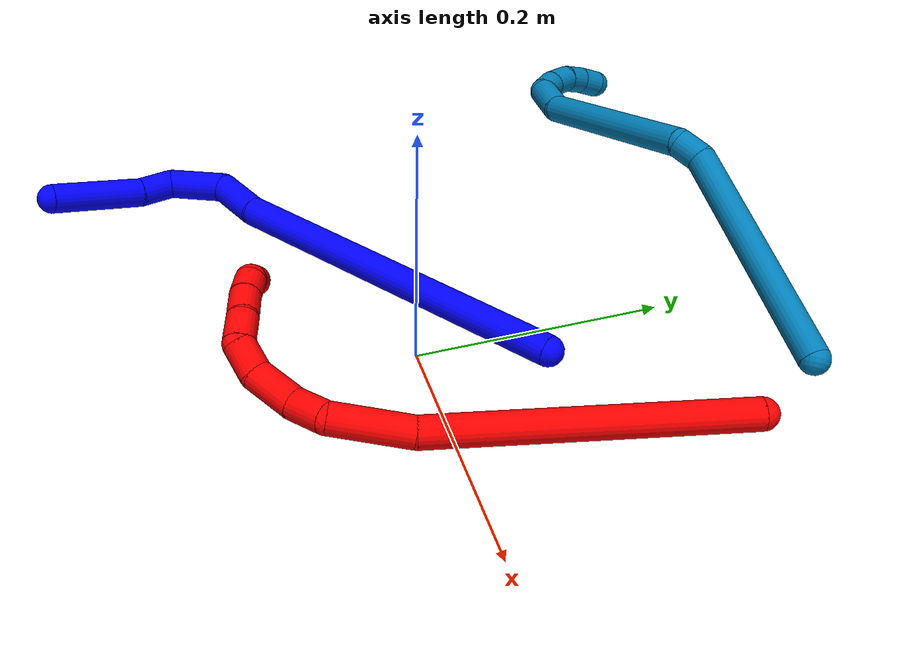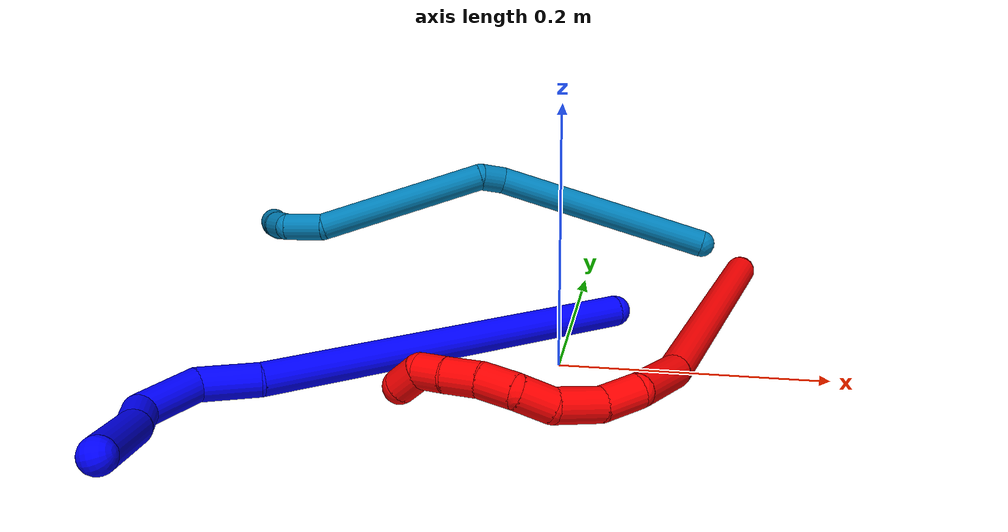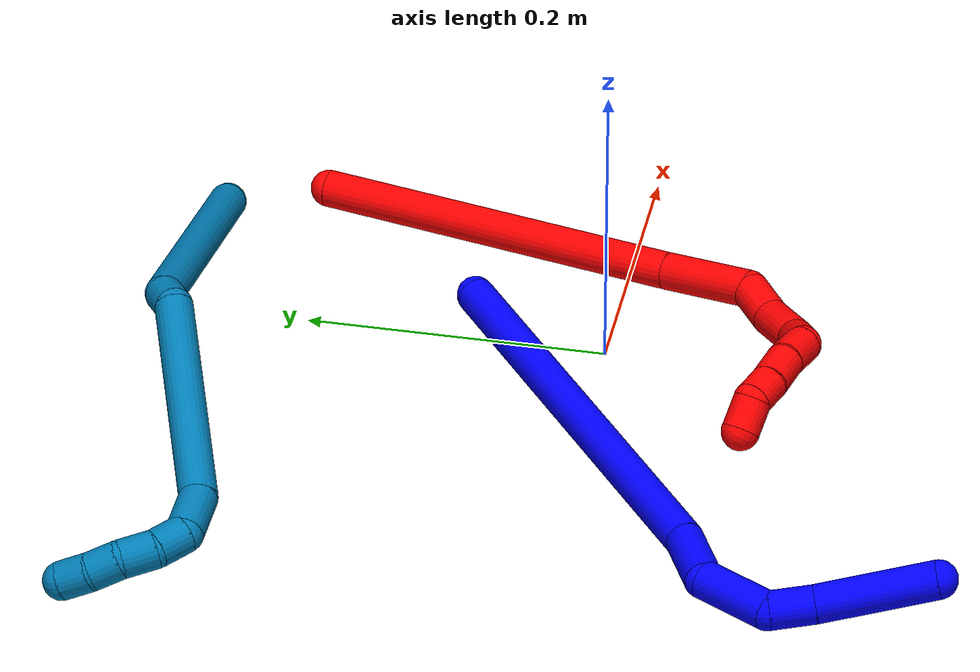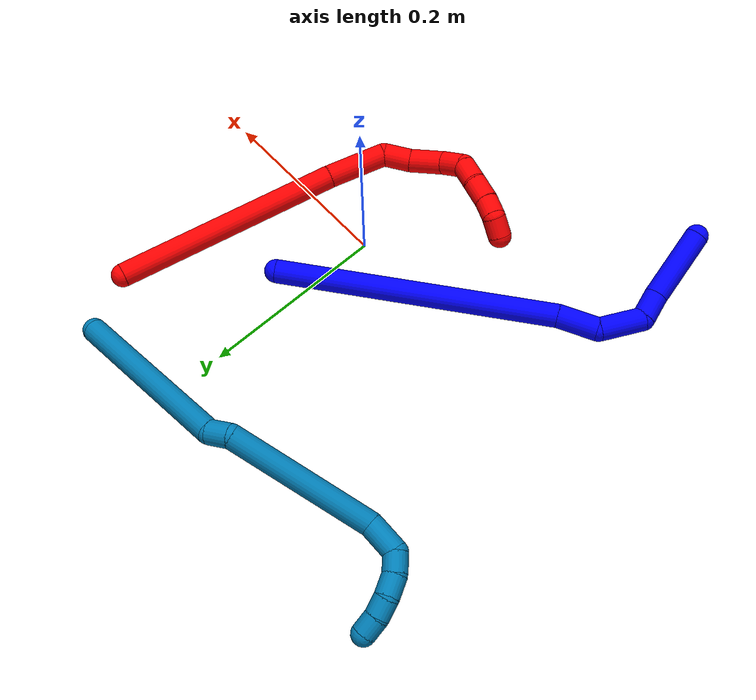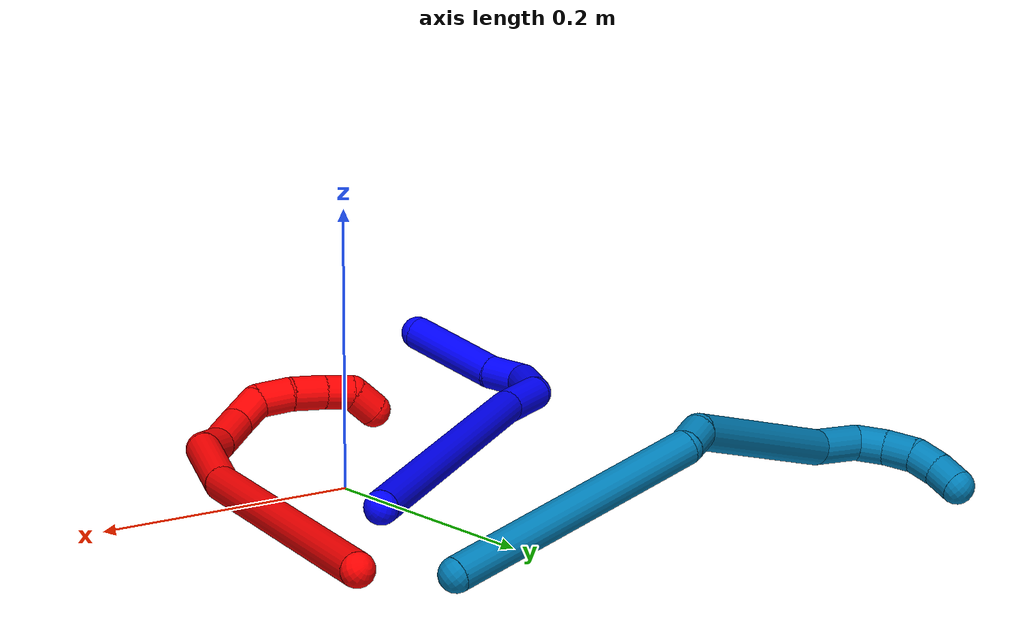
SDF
<sdf version="1.7">
 <world name="default">
  <model name="1">
   <static>0</static>
   <link name="1">
    <collision name="collision-cylinder-e_1_1_4">
     <pose>-0.087312 -0.042371 0.113708 0.356689 -0.623713 -0.116092</pose>
     <geometry><cylinder><radius>0.0125</radius><length>0.298986</length></cylinder></geometry>
     <surface>
      <friction><ode><mu>1.16</mu><mu2>1.16</mu2><slip1>0</slip1><slip2>0</slip2></ode></friction>
      <contact><ode><kp>1e+06</kp><kd>1</kd><max_vel>0</max_vel><min_depth>0.001</min_depth></ode></contact>
     </surface>
    </collision>
    <visual name="visual-cylinder-e_1_1_4">
     <pose>-0.087312 -0.042371 0.113708 0.356689 -0.623713 -0.116092</pose>
     <geometry><cylinder><radius>0.0125</radius><length>0.298986</length></cylinder></geometry>
     <material><ambient>0 0 1 1</ambient></material>
    </visual>
    <collision name="collision-cylinder-e_2_4_5">
     <pose>-0.183467 -0.092105 0.246315 0.371513 -0.411147 -0.078331</pose>
     <geometry><cylinder><radius>0.0125</radius><length>0.044254</length></cylinder></geometry>
     <surface>
      <friction><ode><mu>1.16</mu><mu2>1.16</mu2><slip1>0</slip1><slip2>0</slip2></ode></friction>
      <contact><ode><kp>1e+06</kp><kd>1</kd><max_vel>0</max_vel><min_depth>0.001</min_depth></ode></contact>
     </surface>
    </collision>
    <visual name="visual-cylinder-e_2_4_5">
     <pose>-0.183467 -0.092105 0.246315 0.371513 -0.411147 -0.078331</pose>
     <geometry><cylinder><radius>0.0125</radius><length>0.044254</length></cylinder></geometry>
     <material><ambient>0 0 1 1</ambient></material>
    </visual>
    <collision name="collision-cylinder-e_3_5_6">
     <pose>-0.213936 -0.103524 0.275835 0.36485 -1.08679 -0.221952</pose>
     <geometry><cylinder><radius>0.0125</radius><length>0.048866</length></cylinder></geometry>
     <surface>
      <friction><ode><mu>1.16</mu><mu2>1.16</mu2><slip1>0</slip1><slip2>0</slip2></ode></friction>
      <contact><ode><kp>1e+06</kp><kd>1</kd><max_vel>0</max_vel><min_depth>0.001</min_depth></ode></contact>
     </surface>
    </collision>
    <visual name="visual-cylinder-e_3_5_6">
     <pose>-0.213936 -0.103524 0.275835 0.36485 -1.08679 -0.221952</pose>
     <geometry><cylinder><radius>0.0125</radius><length>0.048866</length></cylinder></geometry>
     <material><ambient>0 0 1 1</ambient></material>
    </visual>
    <collision name="collision-cylinder-e_4_6_7">
     <pose>-0.249671 -0.108536 0.281746 2.94147 -1.24246 -2.86288</pose>
     <geometry><cylinder><radius>0.0125</radius><length>0.029808</length></cylinder></geometry>
     <surface>
      <friction><ode><mu>1.16</mu><mu2>1.16</mu2><slip1>0</slip1><slip2>0</slip2></ode></friction>
      <contact><ode><kp>1e+06</kp><kd>1</kd><max_vel>0</max_vel><min_depth>0.001</min_depth></ode></contact>
     </surface>
    </collision>
    <visual name="visual-cylinder-e_4_6_7">
     <pose>-0.249671 -0.108536 0.281746 2.94147 -1.24246 -2.86288</pose>
     <geometry><cylinder><radius>0.0125</radius><length>0.029808</length></cylinder></geometry>
     <material><ambient>0 0 1 1</ambient></material>
    </visual>
    <collision name="collision-cylinder-e_5_7_2">
     <pose>-0.300218 -0.119316 0.267031 2.36531 -1.20347 -2.06747</pose>
     <geometry><cylinder><radius>0.0125</radius><length>0.078087</length></cylinder></geometry>
     <surface>
      <friction><ode><mu>1.16</mu><mu2>1.16</mu2><slip1>0</slip1><slip2>0</slip2></ode></friction>
      <contact><ode><kp>1e+06</kp><kd>1</kd><max_vel>0</max_vel><min_depth>0.001</min_depth></ode></contact>
     </surface>
    </collision>
    <visual name="visual-cylinder-e_5_7_2">
     <pose>-0.300218 -0.119316 0.267031 2.36531 -1.20347 -2.06747</pose>
     <geometry><cylinder><radius>0.0125</radius><length>0.078087</length></cylinder></geometry>
     <material><ambient>0 0 1 1</ambient></material>
    </visual>
    <collision name="collision-sphere-2">
     <pose>-0.336657 -0.129139 0.257026 0 -0 0</pose>
     <geometry><sphere><radius>0.0125</radius></sphere></geometry>
     <surface>
      <friction><ode><mu>1.16</mu><mu2>1.16</mu2><slip1>0</slip1><slip2>0</slip2></ode></friction>
      <contact><ode><kp>1e+06</kp><kd>1</kd><max_vel>0</max_vel><min_depth>0.001</min_depth></ode></contact>
     </surface>
    </collision>
    <visual name="visual-sphere-2">
     <pose>-0.336657 -0.129139 0.257026 0 -0 0</pose>
     <geometry><sphere><radius>0.0125</radius></sphere></geometry>
     <material><ambient>0 0 1 1</ambient></material>
    </visual>
    <collision name="collision-sphere-7">
     <pose>-0.263779 -0.109492 0.277036 0 -0 0</pose>
     <geometry><sphere><radius>0.0125</radius></sphere></geometry>
     <surface>
      <friction><ode><mu>1.16</mu><mu2>1.16</mu2><slip1>0</slip1><slip2>0</slip2></ode></friction>
      <contact><ode><kp>1e+06</kp><kd>1</kd><max_vel>0</max_vel><min_depth>0.001</min_depth></ode></contact>
     </surface>
    </collision>
    <visual name="visual-sphere-7">
     <pose>-0.263779 -0.109492 0.277036 0 -0 0</pose>
     <geometry><sphere><radius>0.0125</radius></sphere></geometry>
     <material><ambient>0 0 1 1</ambient></material>
    </visual>
    <collision name="collision-sphere-6">
     <pose>-0.235563 -0.107581 0.286456 0 -0 0</pose>
     <geometry><sphere><radius>0.0125</radius></sphere></geometry>
     <surface>
      <friction><ode><mu>1.16</mu><mu2>1.16</mu2><slip1>0</slip1><slip2>0</slip2></ode></friction>
      <contact><ode><kp>1e+06</kp><kd>1</kd><max_vel>0</max_vel><min_depth>0.001</min_depth></ode></contact>
     </surface>
    </collision>
    <visual name="visual-sphere-6">
     <pose>-0.235563 -0.107581 0.286456 0 -0 0</pose>
     <geometry><sphere><radius>0.0125</radius></sphere></geometry>
     <material><ambient>0 0 1 1</ambient></material>
    </visual>
    <collision name="collision-sphere-5">
     <pose>-0.19231 -0.099468 0.265214 0 -0 0</pose>
     <geometry><sphere><radius>0.0125</radius></sphere></geometry>
     <surface>
      <friction><ode><mu>1.16</mu><mu2>1.16</mu2><slip1>0</slip1><slip2>0</slip2></ode></friction>
      <contact><ode><kp>1e+06</kp><kd>1</kd><max_vel>0</max_vel><min_depth>0.001</min_depth></ode></contact>
     </surface>
    </collision>
    <visual name="visual-sphere-5">
     <pose>-0.19231 -0.099468 0.265214 0 -0 0</pose>
     <geometry><sphere><radius>0.0125</radius></sphere></geometry>
     <material><ambient>0 0 1 1</ambient></material>
    </visual>
    <collision name="collision-sphere-1">
     <geometry><sphere><radius>0.0125</radius></sphere></geometry>
     <surface>
      <friction><ode><mu>1.16</mu><mu2>1.16</mu2><slip1>0</slip1><slip2>0</slip2></ode></friction>
      <contact><ode><kp>1e+06</kp><kd>1</kd><max_vel>0</max_vel><min_depth>0.001</min_depth></ode></contact>
     </surface>
    </collision>
    <visual name="visual-sphere-1">
     <geometry><sphere><radius>0.0125</radius></sphere></geometry>
     <material><ambient>0 0 1 1</ambient></material>
    </visual>
    <collision name="collision-sphere-4">
     <pose>-0.174623 -0.084741 0.227416 0 -0 0</pose>
     <geometry><sphere><radius>0.0125</radius></sphere></geometry>
     <surface>
      <friction><ode><mu>1.16</mu><mu2>1.16</mu2><slip1>0</slip1><slip2>0</slip2></ode></friction>
      <contact><ode><kp>1e+06</kp><kd>1</kd><max_vel>0</max_vel><min_depth>0.001</min_depth></ode></contact>
     </surface>
    </collision>
    <visual name="visual-sphere-4">
     <pose>-0.174623 -0.084741 0.227416 0 -0 0</pose>
     <geometry><sphere><radius>0.0125</radius></sphere></geometry>
     <material><ambient>0 0 1 1</ambient></material>
    </visual>
    <inertial>
     <pose>-0.151127 -0.06871 0.175252 0 -0 0</pose>
     <mass>0.5</mass>
     <inertia>
      <ixx>0.001558</ixx>
      <ixy>0</ixy>
      <ixz>0</ixz>
      <iyy>0.001963</iyy>
      <iyz>0</iyz>
      <izz>0.002035</izz>
     </inertia>
    </inertial>
   </link>
   <pose>0.034385 0.093791 0.011487 -1.86746 -0.079243 1.59748</pose>
  </model>
  <model name="2">
   <static>0</static>
   <link name="2">
    <collision name="collision-cylinder-e_1_1_4">
     <pose>0.000481 -0.071215 -0.101326 2.52896 0.003884 0.012282</pose>
     <geometry><cylinder><radius>0.0125</radius><length>0.247699</length></cylinder></geometry>
     <surface>
      <friction><ode><mu>1.16</mu><mu2>1.16</mu2><slip1>0</slip1><slip2>0</slip2></ode></friction>
      <contact><ode><kp>1e+06</kp><kd>1</kd><max_vel>0</max_vel><min_depth>0.001</min_depth></ode></contact>
     </surface>
    </collision>
    <visual name="visual-cylinder-e_1_1_4">
     <pose>0.000481 -0.071215 -0.101326 2.52896 0.003884 0.012282</pose>
     <geometry><cylinder><radius>0.0125</radius><length>0.247699</length></cylinder></geometry>
     <material><ambient>1 0 0 1</ambient></material>
    </visual>
    <collision name="collision-cylinder-e_2_4_5">
     <pose>-0.000549 -0.16577 -0.224491 2.323 -0.04725 -0.108835</pose>
     <geometry><cylinder><radius>0.0125</radius><length>0.063999</length></cylinder></geometry>
     <surface>
      <friction><ode><mu>1.16</mu><mu2>1.16</mu2><slip1>0</slip1><slip2>0</slip2></ode></friction>
      <contact><ode><kp>1e+06</kp><kd>1</kd><max_vel>0</max_vel><min_depth>0.001</min_depth></ode></contact>
     </surface>
    </collision>
    <visual name="visual-cylinder-e_2_4_5">
     <pose>-0.000549 -0.16577 -0.224491 2.323 -0.04725 -0.108835</pose>
     <geometry><cylinder><radius>0.0125</radius><length>0.063999</length></cylinder></geometry>
     <material><ambient>1 0 0 1</ambient></material>
    </visual>
    <collision name="collision-cylinder-e_3_5_6">
     <pose>-0.011099 -0.19872 -0.253413 2.20594 -0.648011 -1.17332</pose>
     <geometry><cylinder><radius>0.0125</radius><length>0.029948</length></cylinder></geometry>
     <surface>
      <friction><ode><mu>1.16</mu><mu2>1.16</mu2><slip1>0</slip1><slip2>0</slip2></ode></friction>
      <contact><ode><kp>1e+06</kp><kd>1</kd><max_vel>0</max_vel><min_depth>0.001</min_depth></ode></contact>
     </surface>
    </collision>
    <visual name="visual-cylinder-e_3_5_6">
     <pose>-0.011099 -0.19872 -0.253413 2.20594 -0.648011 -1.17332</pose>
     <geometry><cylinder><radius>0.0125</radius><length>0.029948</length></cylinder></geometry>
     <material><ambient>1 0 0 1</ambient></material>
    </visual>
    <collision name="collision-cylinder-e_4_6_7">
     <pose>-0.028547 -0.224157 -0.266135 1.91305 -0.464054 -0.646524</pose>
     <geometry><cylinder><radius>0.0125</radius><length>0.037577</length></cylinder></geometry>
     <surface>
      <friction><ode><mu>1.16</mu><mu2>1.16</mu2><slip1>0</slip1><slip2>0</slip2></ode></friction>
      <contact><ode><kp>1e+06</kp><kd>1</kd><max_vel>0</max_vel><min_depth>0.001</min_depth></ode></contact>
     </surface>
    </collision>
    <visual name="visual-cylinder-e_4_6_7">
     <pose>-0.028547 -0.224157 -0.266135 1.91305 -0.464054 -0.646524</pose>
     <geometry><cylinder><radius>0.0125</radius><length>0.037577</length></cylinder></geometry>
     <material><ambient>1 0 0 1</ambient></material>
    </visual>
    <collision name="collision-cylinder-e_5_7_8">
     <pose>-0.042327 -0.252184 -0.270628 1.47716 -0.413144 -0.377074</pose>
     <geometry><cylinder><radius>0.0125</radius><length>0.026757</length></cylinder></geometry>
     <surface>
      <friction><ode><mu>1.16</mu><mu2>1.16</mu2><slip1>0</slip1><slip2>0</slip2></ode></friction>
      <contact><ode><kp>1e+06</kp><kd>1</kd><max_vel>0</max_vel><min_depth>0.001</min_depth></ode></contact>
     </surface>
    </collision>
    <visual name="visual-cylinder-e_5_7_8">
     <pose>-0.042327 -0.252184 -0.270628 1.47716 -0.413144 -0.377074</pose>
     <geometry><cylinder><radius>0.0125</radius><length>0.026757</length></cylinder></geometry>
     <material><ambient>1 0 0 1</ambient></material>
    </visual>
    <collision name="collision-cylinder-e_6_8_9">
     <pose>-0.057416 -0.270583 -0.263791 0.82813 -0.857064 -0.396273</pose>
     <geometry><cylinder><radius>0.0125</radius><length>0.02571</length></cylinder></geometry>
     <surface>
      <friction><ode><mu>1.16</mu><mu2>1.16</mu2><slip1>0</slip1><slip2>0</slip2></ode></friction>
      <contact><ode><kp>1e+06</kp><kd>1</kd><max_vel>0</max_vel><min_depth>0.001</min_depth></ode></contact>
     </surface>
    </collision>
    <visual name="visual-cylinder-e_6_8_9">
     <pose>-0.057416 -0.270583 -0.263791 0.82813 -0.857064 -0.396273</pose>
     <geometry><cylinder><radius>0.0125</radius><length>0.02571</length></cylinder></geometry>
     <material><ambient>1 0 0 1</ambient></material>
    </visual>
    <collision name="collision-cylinder-e_7_9_10">
     <pose>-0.078033 -0.282024 -0.253881 0.893163 -1.0177 -0.522061</pose>
     <geometry><cylinder><radius>0.0125</radius><length>0.02562</length></cylinder></geometry>
     <surface>
      <friction><ode><mu>1.16</mu><mu2>1.16</mu2><slip1>0</slip1><slip2>0</slip2></ode></friction>
      <contact><ode><kp>1e+06</kp><kd>1</kd><max_vel>0</max_vel><min_depth>0.001</min_depth></ode></contact>
     </surface>
    </collision>
    <visual name="visual-cylinder-e_7_9_10">
     <pose>-0.078033 -0.282024 -0.253881 0.893163 -1.0177 -0.522061</pose>
     <geometry><cylinder><radius>0.0125</radius><length>0.02562</length></cylinder></geometry>
     <material><ambient>1 0 0 1</ambient></material>
    </visual>
    <collision name="collision-cylinder-e_8_10_11">
     <pose>-0.097918 -0.290498 -0.245375 0.645792 -1.03218 -0.375235</pose>
     <geometry><cylinder><radius>0.0125</radius><length>0.020934</length></cylinder></geometry>
     <surface>
      <friction><ode><mu>1.16</mu><mu2>1.16</mu2><slip1>0</slip1><slip2>0</slip2></ode></friction>
      <contact><ode><kp>1e+06</kp><kd>1</kd><max_vel>0</max_vel><min_depth>0.001</min_depth></ode></contact>
     </surface>
    </collision>
    <visual name="visual-cylinder-e_8_10_11">
     <pose>-0.097918 -0.290498 -0.245375 0.645792 -1.03218 -0.375235</pose>
     <geometry><cylinder><radius>0.0125</radius><length>0.020934</length></cylinder></geometry>
     <material><ambient>1 0 0 1</ambient></material>
    </visual>
    <collision name="collision-cylinder-e_9_11_2">
     <pose>-0.117637 -0.291993 -0.241389 -1.74326 -1.40808 1.58068</pose>
     <geometry><cylinder><radius>0.0125</radius><length>0.021756</length></cylinder></geometry>
     <surface>
      <friction><ode><mu>1.16</mu><mu2>1.16</mu2><slip1>0</slip1><slip2>0</slip2></ode></friction>
      <contact><ode><kp>1e+06</kp><kd>1</kd><max_vel>0</max_vel><min_depth>0.001</min_depth></ode></contact>
     </surface>
    </collision>
    <visual name="visual-cylinder-e_9_11_2">
     <pose>-0.117637 -0.291993 -0.241389 -1.74326 -1.40808 1.58068</pose>
     <geometry><cylinder><radius>0.0125</radius><length>0.021756</length></cylinder></geometry>
     <material><ambient>1 0 0 1</ambient></material>
    </visual>
    <collision name="collision-sphere-2">
     <pose>-0.128372 -0.290257 -0.241692 0 -0 0</pose>
     <geometry><sphere><radius>0.0125</radius></sphere></geometry>
     <surface>
      <friction><ode><mu>1.16</mu><mu2>1.16</mu2><slip1>0</slip1><slip2>0</slip2></ode></friction>
      <contact><ode><kp>1e+06</kp><kd>1</kd><max_vel>0</max_vel><min_depth>0.001</min_depth></ode></contact>
     </surface>
    </collision>
    <visual name="visual-sphere-2">
     <pose>-0.128372 -0.290257 -0.241692 0 -0 0</pose>
     <geometry><sphere><radius>0.0125</radius></sphere></geometry>
     <material><ambient>1 0 0 1</ambient></material>
    </visual>
    <collision name="collision-sphere-11">
     <pose>-0.106903 -0.293729 -0.241087 0 -0 0</pose>
     <geometry><sphere><radius>0.0125</radius></sphere></geometry>
     <surface>
      <friction><ode><mu>1.16</mu><mu2>1.16</mu2><slip1>0</slip1><slip2>0</slip2></ode></friction>
      <contact><ode><kp>1e+06</kp><kd>1</kd><max_vel>0</max_vel><min_depth>0.001</min_depth></ode></contact>
     </surface>
    </collision>
    <visual name="visual-sphere-11">
     <pose>-0.106903 -0.293729 -0.241087 0 -0 0</pose>
     <geometry><sphere><radius>0.0125</radius></sphere></geometry>
     <material><ambient>1 0 0 1</ambient></material>
    </visual>
    <collision name="collision-sphere-10">
     <pose>-0.088933 -0.287267 -0.249663 0 -0 0</pose>
     <geometry><sphere><radius>0.0125</radius></sphere></geometry>
     <surface>
      <friction><ode><mu>1.16</mu><mu2>1.16</mu2><slip1>0</slip1><slip2>0</slip2></ode></friction>
      <contact><ode><kp>1e+06</kp><kd>1</kd><max_vel>0</max_vel><min_depth>0.001</min_depth></ode></contact>
     </surface>
    </collision>
    <visual name="visual-sphere-10">
     <pose>-0.088933 -0.287267 -0.249663 0 -0 0</pose>
     <geometry><sphere><radius>0.0125</radius></sphere></geometry>
     <material><ambient>1 0 0 1</ambient></material>
    </visual>
    <collision name="collision-sphere-9">
     <pose>-0.067133 -0.276782 -0.2581 0 -0 0</pose>
     <geometry><sphere><radius>0.0125</radius></sphere></geometry>
     <surface>
      <friction><ode><mu>1.16</mu><mu2>1.16</mu2><slip1>0</slip1><slip2>0</slip2></ode></friction>
      <contact><ode><kp>1e+06</kp><kd>1</kd><max_vel>0</max_vel><min_depth>0.001</min_depth></ode></contact>
     </surface>
    </collision>
    <visual name="visual-sphere-9">
     <pose>-0.067133 -0.276782 -0.2581 0 -0 0</pose>
     <geometry><sphere><radius>0.0125</radius></sphere></geometry>
     <material><ambient>1 0 0 1</ambient></material>
    </visual>
    <collision name="collision-sphere-4">
     <pose>0.000962 -0.142431 -0.202651 0 -0 0</pose>
     <geometry><sphere><radius>0.0125</radius></sphere></geometry>
     <surface>
      <friction><ode><mu>1.16</mu><mu2>1.16</mu2><slip1>0</slip1><slip2>0</slip2></ode></friction>
      <contact><ode><kp>1e+06</kp><kd>1</kd><max_vel>0</max_vel><min_depth>0.001</min_depth></ode></contact>
     </surface>
    </collision>
    <visual name="visual-sphere-4">
     <pose>0.000962 -0.142431 -0.202651 0 -0 0</pose>
     <geometry><sphere><radius>0.0125</radius></sphere></geometry>
     <material><ambient>1 0 0 1</ambient></material>
    </visual>
    <collision name="collision-sphere-1">
     <geometry><sphere><radius>0.0125</radius></sphere></geometry>
     <surface>
      <friction><ode><mu>1.16</mu><mu2>1.16</mu2><slip1>0</slip1><slip2>0</slip2></ode></friction>
      <contact><ode><kp>1e+06</kp><kd>1</kd><max_vel>0</max_vel><min_depth>0.001</min_depth></ode></contact>
     </surface>
    </collision>
    <visual name="visual-sphere-1">
     <geometry><sphere><radius>0.0125</radius></sphere></geometry>
     <material><ambient>1 0 0 1</ambient></material>
    </visual>
    <collision name="collision-sphere-8">
     <pose>-0.047699 -0.264383 -0.269483 0 -0 0</pose>
     <geometry><sphere><radius>0.0125</radius></sphere></geometry>
     <surface>
      <friction><ode><mu>1.16</mu><mu2>1.16</mu2><slip1>0</slip1><slip2>0</slip2></ode></friction>
      <contact><ode><kp>1e+06</kp><kd>1</kd><max_vel>0</max_vel><min_depth>0.001</min_depth></ode></contact>
     </surface>
    </collision>
    <visual name="visual-sphere-8">
     <pose>-0.047699 -0.264383 -0.269483 0 -0 0</pose>
     <geometry><sphere><radius>0.0125</radius></sphere></geometry>
     <material><ambient>1 0 0 1</ambient></material>
    </visual>
    <collision name="collision-sphere-5">
     <pose>-0.002061 -0.18911 -0.24633 0 -0 0</pose>
     <geometry><sphere><radius>0.0125</radius></sphere></geometry>
     <surface>
      <friction><ode><mu>1.16</mu><mu2>1.16</mu2><slip1>0</slip1><slip2>0</slip2></ode></friction>
      <contact><ode><kp>1e+06</kp><kd>1</kd><max_vel>0</max_vel><min_depth>0.001</min_depth></ode></contact>
     </surface>
    </collision>
    <visual name="visual-sphere-5">
     <pose>-0.002061 -0.18911 -0.24633 0 -0 0</pose>
     <geometry><sphere><radius>0.0125</radius></sphere></geometry>
     <material><ambient>1 0 0 1</ambient></material>
    </visual>
    <collision name="collision-sphere-6">
     <pose>-0.020137 -0.20833 -0.260496 0 -0 0</pose>
     <geometry><sphere><radius>0.0125</radius></sphere></geometry>
     <surface>
      <friction><ode><mu>1.16</mu><mu2>1.16</mu2><slip1>0</slip1><slip2>0</slip2></ode></friction>
      <contact><ode><kp>1e+06</kp><kd>1</kd><max_vel>0</max_vel><min_depth>0.001</min_depth></ode></contact>
     </surface>
    </collision>
    <visual name="visual-sphere-6">
     <pose>-0.020137 -0.20833 -0.260496 0 -0 0</pose>
     <geometry><sphere><radius>0.0125</radius></sphere></geometry>
     <material><ambient>1 0 0 1</ambient></material>
    </visual>
    <collision name="collision-sphere-7">
     <pose>-0.036956 -0.239985 -0.271774 0 -0 0</pose>
     <geometry><sphere><radius>0.0125</radius></sphere></geometry>
     <surface>
      <friction><ode><mu>1.16</mu><mu2>1.16</mu2><slip1>0</slip1><slip2>0</slip2></ode></friction>
      <contact><ode><kp>1e+06</kp><kd>1</kd><max_vel>0</max_vel><min_depth>0.001</min_depth></ode></contact>
     </surface>
    </collision>
    <visual name="visual-sphere-7">
     <pose>-0.036956 -0.239985 -0.271774 0 -0 0</pose>
     <geometry><sphere><radius>0.0125</radius></sphere></geometry>
     <material><ambient>1 0 0 1</ambient></material>
    </visual>
    <inertial>
     <pose>-0.021076 -0.151974 -0.175942 0 -0 0</pose>
     <mass>0.5</mass>
     <inertia>
      <ixx>0.001306</ixx>
      <ixy>0</ixy>
      <ixz>0</ixz>
      <iyy>-0.001069</iyy>
      <iyz>0</iyz>
      <izz>0.000753</izz>
     </inertia>
    </inertial>
   </link>
   <pose>0.138661 0.216364 0.0115 -0.955588 -0.583851 -0.216199</pose>
  </model>
  <model name="9">
   <static>0</static>
   <link name="9">
    <collision name="collision-cylinder-e_1_1_4">
     <pose>-0.062093 0.009501 -0.077704 -3.01993 -0.670574 2.79549</pose>
     <geometry><cylinder><radius>0.0125</radius><length>0.199837</length></cylinder></geometry>
     <surface>
      <friction><ode><mu>1.16</mu><mu2>1.16</mu2><slip1>0</slip1><slip2>0</slip2></ode></friction>
      <contact><ode><kp>1e+06</kp><kd>1</kd><max_vel>0</max_vel><min_depth>0.001</min_depth></ode></contact>
     </surface>
    </collision>
    <visual name="visual-cylinder-e_1_1_4">
     <pose>-0.062093 0.009501 -0.077704 -3.01993 -0.670574 2.79549</pose>
     <geometry><cylinder><radius>0.0125</radius><length>0.199837</length></cylinder></geometry>
     <material><ambient>0 0.490196 0.709804 1</ambient></material>
    </visual>
    <collision name="collision-cylinder-e_2_4_5">
     <pose>-0.133146 0.024225 -0.160982 -2.38872 -0.864852 1.72518</pose>
     <geometry><cylinder><radius>0.0125</radius><length>0.023549</length></cylinder></geometry>
     <surface>
      <friction><ode><mu>1.16</mu><mu2>1.16</mu2><slip1>0</slip1><slip2>0</slip2></ode></friction>
      <contact><ode><kp>1e+06</kp><kd>1</kd><max_vel>0</max_vel><min_depth>0.001</min_depth></ode></contact>
     </surface>
    </collision>
    <visual name="visual-cylinder-e_2_4_5">
     <pose>-0.133146 0.024225 -0.160982 -2.38872 -0.864852 1.72518</pose>
     <geometry><cylinder><radius>0.0125</radius><length>0.023549</length></cylinder></geometry>
     <material><ambient>0 0.490196 0.709804 1</ambient></material>
    </visual>
    <collision name="collision-cylinder-e_3_5_6">
     <pose>-0.217453 0.028866 -0.187358 3.11364 -1.30133 -3.10487</pose>
     <geometry><cylinder><radius>0.0125</radius><length>0.156335</length></cylinder></geometry>
     <surface>
      <friction><ode><mu>1.16</mu><mu2>1.16</mu2><slip1>0</slip1><slip2>0</slip2></ode></friction>
      <contact><ode><kp>1e+06</kp><kd>1</kd><max_vel>0</max_vel><min_depth>0.001</min_depth></ode></contact>
     </surface>
    </collision>
    <visual name="visual-cylinder-e_3_5_6">
     <pose>-0.217453 0.028866 -0.187358 3.11364 -1.30133 -3.10487</pose>
     <geometry><cylinder><radius>0.0125</radius><length>0.156335</length></cylinder></geometry>
     <material><ambient>0 0.490196 0.709804 1</ambient></material>
    </visual>
    <collision name="collision-cylinder-e_4_6_7">
     <pose>-0.306779 0.025737 -0.218972 2.91025 -0.899284 -2.66908</pose>
     <geometry><cylinder><radius>0.0125</radius><length>0.035711</length></cylinder></geometry>
     <surface>
      <friction><ode><mu>1.16</mu><mu2>1.16</mu2><slip1>0</slip1><slip2>0</slip2></ode></friction>
      <contact><ode><kp>1e+06</kp><kd>1</kd><max_vel>0</max_vel><min_depth>0.001</min_depth></ode></contact>
     </surface>
    </collision>
    <visual name="visual-cylinder-e_4_6_7">
     <pose>-0.306779 0.025737 -0.218972 2.91025 -0.899284 -2.66908</pose>
     <geometry><cylinder><radius>0.0125</radius><length>0.035711</length></cylinder></geometry>
     <material><ambient>0 0.490196 0.709804 1</ambient></material>
    </visual>
    <collision name="collision-cylinder-e_5_7_8">
     <pose>-0.323953 0.015793 -0.236889 2.33594 -0.302111 -0.686157</pose>
     <geometry><cylinder><radius>0.0125</radius><length>0.021482</length></cylinder></geometry>
     <surface>
      <friction><ode><mu>1.16</mu><mu2>1.16</mu2><slip1>0</slip1><slip2>0</slip2></ode></friction>
      <contact><ode><kp>1e+06</kp><kd>1</kd><max_vel>0</max_vel><min_depth>0.001</min_depth></ode></contact>
     </surface>
    </collision>
    <visual name="visual-cylinder-e_5_7_8">
     <pose>-0.323953 0.015793 -0.236889 2.33594 -0.302111 -0.686157</pose>
     <geometry><cylinder><radius>0.0125</radius><length>0.021482</length></cylinder></geometry>
     <material><ambient>0 0.490196 0.709804 1</ambient></material>
    </visual>
    <collision name="collision-cylinder-e_6_8_9">
     <pose>-0.327461 -0.000941 -0.250507 2.18002 -0.027372 -0.052467</pose>
     <geometry><cylinder><radius>0.0125</radius><length>0.02278</length></cylinder></geometry>
     <surface>
      <friction><ode><mu>1.16</mu><mu2>1.16</mu2><slip1>0</slip1><slip2>0</slip2></ode></friction>
      <contact><ode><kp>1e+06</kp><kd>1</kd><max_vel>0</max_vel><min_depth>0.001</min_depth></ode></contact>
     </surface>
    </collision>
    <visual name="visual-cylinder-e_6_8_9">
     <pose>-0.327461 -0.000941 -0.250507 2.18002 -0.027372 -0.052467</pose>
     <geometry><cylinder><radius>0.0125</radius><length>0.02278</length></cylinder></geometry>
     <material><ambient>0 0.490196 0.709804 1</ambient></material>
    </visual>
    <collision name="collision-cylinder-e_7_9_10">
     <pose>-0.327831 -0.019806 -0.260167 1.88963 -0.005856 -0.008099</pose>
     <geometry><cylinder><radius>0.0125</radius><length>0.020066</length></cylinder></geometry>
     <surface>
      <friction><ode><mu>1.16</mu><mu2>1.16</mu2><slip1>0</slip1><slip2>0</slip2></ode></friction>
      <contact><ode><kp>1e+06</kp><kd>1</kd><max_vel>0</max_vel><min_depth>0.001</min_depth></ode></contact>
     </surface>
    </collision>
    <visual name="visual-cylinder-e_7_9_10">
     <pose>-0.327831 -0.019806 -0.260167 1.88963 -0.005856 -0.008099</pose>
     <geometry><cylinder><radius>0.0125</radius><length>0.020066</length></cylinder></geometry>
     <material><ambient>0 0.490196 0.709804 1</ambient></material>
    </visual>
    <collision name="collision-cylinder-e_8_10_2">
     <pose>-0.326344 -0.039184 -0.265034 1.7439 0.153377 0.182373</pose>
     <geometry><cylinder><radius>0.0125</radius><length>0.020239</length></cylinder></geometry>
     <surface>
      <friction><ode><mu>1.16</mu><mu2>1.16</mu2><slip1>0</slip1><slip2>0</slip2></ode></friction>
      <contact><ode><kp>1e+06</kp><kd>1</kd><max_vel>0</max_vel><min_depth>0.001</min_depth></ode></contact>
     </surface>
    </collision>
    <visual name="visual-cylinder-e_8_10_2">
     <pose>-0.326344 -0.039184 -0.265034 1.7439 0.153377 0.182373</pose>
     <geometry><cylinder><radius>0.0125</radius><length>0.020239</length></cylinder></geometry>
     <material><ambient>0 0.490196 0.709804 1</ambient></material>
    </visual>
    <collision name="collision-sphere-2">
     <pose>-0.324798 -0.049036 -0.266757 0 -0 0</pose>
     <geometry><sphere><radius>0.0125</radius></sphere></geometry>
     <surface>
      <friction><ode><mu>1.16</mu><mu2>1.16</mu2><slip1>0</slip1><slip2>0</slip2></ode></friction>
      <contact><ode><kp>1e+06</kp><kd>1</kd><max_vel>0</max_vel><min_depth>0.001</min_depth></ode></contact>
     </surface>
    </collision>
    <visual name="visual-sphere-2">
     <pose>-0.324798 -0.049036 -0.266757 0 -0 0</pose>
     <geometry><sphere><radius>0.0125</radius></sphere></geometry>
     <material><ambient>0 0.490196 0.709804 1</ambient></material>
    </visual>
    <collision name="collision-sphere-10">
     <pose>-0.32789 -0.029333 -0.263312 0 -0 0</pose>
     <geometry><sphere><radius>0.0125</radius></sphere></geometry>
     <surface>
      <friction><ode><mu>1.16</mu><mu2>1.16</mu2><slip1>0</slip1><slip2>0</slip2></ode></friction>
      <contact><ode><kp>1e+06</kp><kd>1</kd><max_vel>0</max_vel><min_depth>0.001</min_depth></ode></contact>
     </surface>
    </collision>
    <visual name="visual-sphere-10">
     <pose>-0.32789 -0.029333 -0.263312 0 -0 0</pose>
     <geometry><sphere><radius>0.0125</radius></sphere></geometry>
     <material><ambient>0 0.490196 0.709804 1</ambient></material>
    </visual>
    <collision name="collision-sphere-9">
     <pose>-0.327773 -0.010278 -0.257022 0 -0 0</pose>
     <geometry><sphere><radius>0.0125</radius></sphere></geometry>
     <surface>
      <friction><ode><mu>1.16</mu><mu2>1.16</mu2><slip1>0</slip1><slip2>0</slip2></ode></friction>
      <contact><ode><kp>1e+06</kp><kd>1</kd><max_vel>0</max_vel><min_depth>0.001</min_depth></ode></contact>
     </surface>
    </collision>
    <visual name="visual-sphere-9">
     <pose>-0.327773 -0.010278 -0.257022 0 -0 0</pose>
     <geometry><sphere><radius>0.0125</radius></sphere></geometry>
     <material><ambient>0 0.490196 0.709804 1</ambient></material>
    </visual>
    <collision name="collision-sphere-4">
     <pose>-0.124186 0.019002 -0.155408 0 -0 0</pose>
     <geometry><sphere><radius>0.0125</radius></sphere></geometry>
     <surface>
      <friction><ode><mu>1.16</mu><mu2>1.16</mu2><slip1>0</slip1><slip2>0</slip2></ode></friction>
      <contact><ode><kp>1e+06</kp><kd>1</kd><max_vel>0</max_vel><min_depth>0.001</min_depth></ode></contact>
     </surface>
    </collision>
    <visual name="visual-sphere-4">
     <pose>-0.124186 0.019002 -0.155408 0 -0 0</pose>
     <geometry><sphere><radius>0.0125</radius></sphere></geometry>
     <material><ambient>0 0.490196 0.709804 1</ambient></material>
    </visual>
    <collision name="collision-sphere-1">
     <geometry><sphere><radius>0.0125</radius></sphere></geometry>
     <surface>
      <friction><ode><mu>1.16</mu><mu2>1.16</mu2><slip1>0</slip1><slip2>0</slip2></ode></friction>
      <contact><ode><kp>1e+06</kp><kd>1</kd><max_vel>0</max_vel><min_depth>0.001</min_depth></ode></contact>
     </surface>
    </collision>
    <visual name="visual-sphere-1">
     <geometry><sphere><radius>0.0125</radius></sphere></geometry>
     <material><ambient>0 0.490196 0.709804 1</ambient></material>
    </visual>
    <collision name="collision-sphere-8">
     <pose>-0.327149 0.008397 -0.243991 0 -0 0</pose>
     <geometry><sphere><radius>0.0125</radius></sphere></geometry>
     <surface>
      <friction><ode><mu>1.16</mu><mu2>1.16</mu2><slip1>0</slip1><slip2>0</slip2></ode></friction>
      <contact><ode><kp>1e+06</kp><kd>1</kd><max_vel>0</max_vel><min_depth>0.001</min_depth></ode></contact>
     </surface>
    </collision>
    <visual name="visual-sphere-8">
     <pose>-0.327149 0.008397 -0.243991 0 -0 0</pose>
     <geometry><sphere><radius>0.0125</radius></sphere></geometry>
     <material><ambient>0 0.490196 0.709804 1</ambient></material>
    </visual>
    <collision name="collision-sphere-5">
     <pose>-0.142107 0.029447 -0.166556 0 -0 0</pose>
     <geometry><sphere><radius>0.0125</radius></sphere></geometry>
     <surface>
      <friction><ode><mu>1.16</mu><mu2>1.16</mu2><slip1>0</slip1><slip2>0</slip2></ode></friction>
      <contact><ode><kp>1e+06</kp><kd>1</kd><max_vel>0</max_vel><min_depth>0.001</min_depth></ode></contact>
     </surface>
    </collision>
    <visual name="visual-sphere-5">
     <pose>-0.142107 0.029447 -0.166556 0 -0 0</pose>
     <geometry><sphere><radius>0.0125</radius></sphere></geometry>
     <material><ambient>0 0.490196 0.709804 1</ambient></material>
    </visual>
    <collision name="collision-sphere-6">
     <pose>-0.2928 0.028284 -0.208159 0 -0 0</pose>
     <geometry><sphere><radius>0.0125</radius></sphere></geometry>
     <surface>
      <friction><ode><mu>1.16</mu><mu2>1.16</mu2><slip1>0</slip1><slip2>0</slip2></ode></friction>
      <contact><ode><kp>1e+06</kp><kd>1</kd><max_vel>0</max_vel><min_depth>0.001</min_depth></ode></contact>
     </surface>
    </collision>
    <visual name="visual-sphere-6">
     <pose>-0.2928 0.028284 -0.208159 0 -0 0</pose>
     <geometry><sphere><radius>0.0125</radius></sphere></geometry>
     <material><ambient>0 0.490196 0.709804 1</ambient></material>
    </visual>
    <collision name="collision-sphere-7">
     <pose>-0.320757 0.02319 -0.229786 0 -0 0</pose>
     <geometry><sphere><radius>0.0125</radius></sphere></geometry>
     <surface>
      <friction><ode><mu>1.16</mu><mu2>1.16</mu2><slip1>0</slip1><slip2>0</slip2></ode></friction>
      <contact><ode><kp>1e+06</kp><kd>1</kd><max_vel>0</max_vel><min_depth>0.001</min_depth></ode></contact>
     </surface>
    </collision>
    <visual name="visual-sphere-7">
     <pose>-0.320757 0.02319 -0.229786 0 -0 0</pose>
     <geometry><sphere><radius>0.0125</radius></sphere></geometry>
     <material><ambient>0 0.490196 0.709804 1</ambient></material>
    </visual>
    <inertial>
     <pose>-0.176194 0.014056 -0.155619 0 -0 0</pose>
     <mass>0.5</mass>
     <inertia>
      <ixx>-0.00043</ixx>
      <ixy>0</ixy>
      <ixz>0</ixz>
      <iyy>0.001145</iyy>
      <iyz>0</iyz>
      <izz>0.00066</izz>
     </inertia>
    </inertial>
   </link>
   <pose>0.103006 0.278477 0.016367 2.38344 -0.46964 0.529231</pose>
  </model>
 </world>
</sdf>
